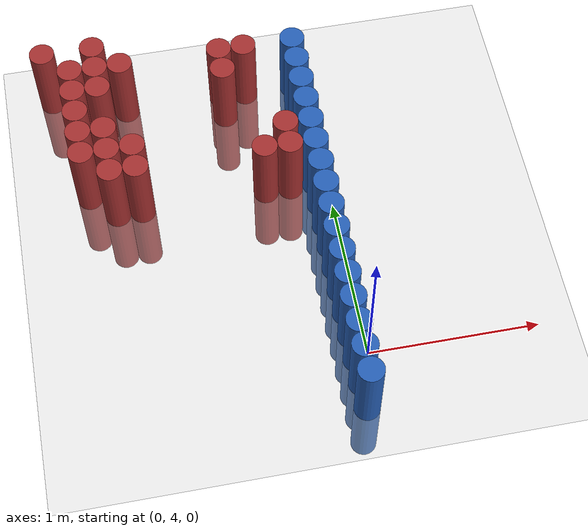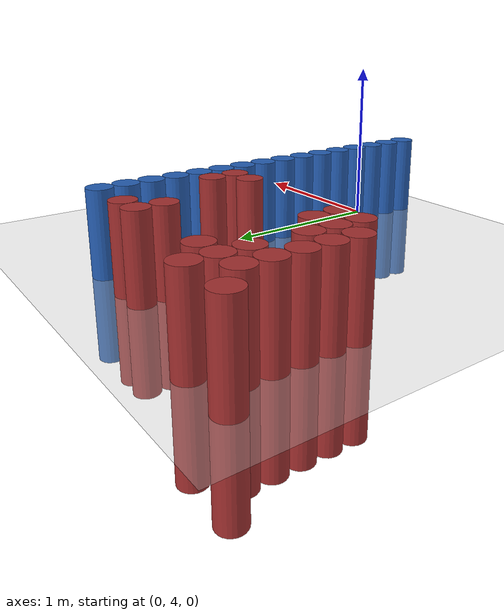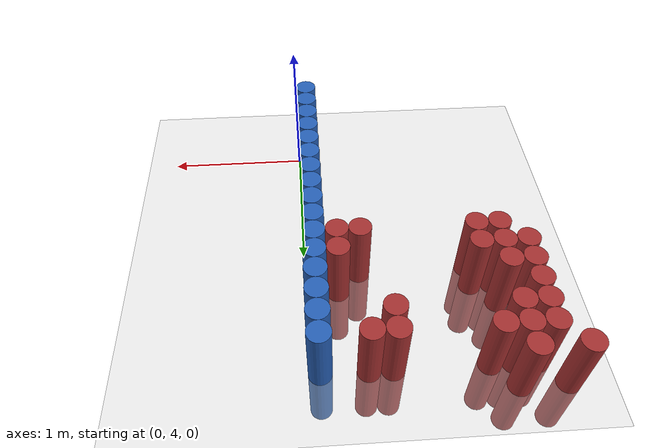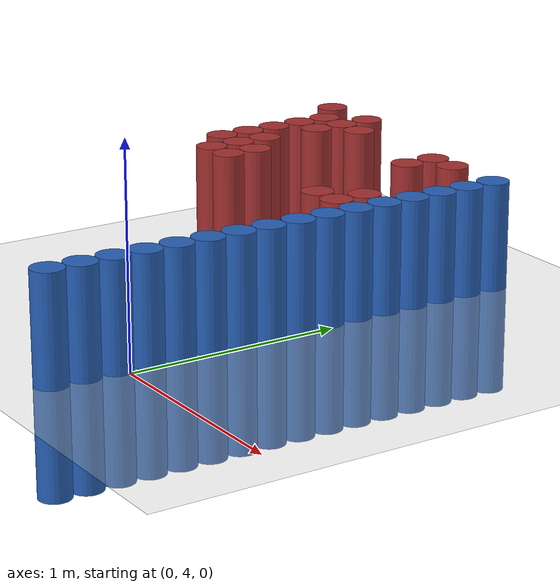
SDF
<sdf version="1.6">
 <world name="default">
  <model name="ground_plane">
   <static>1</static>
   <link name="link">
    <collision name="collision">
     <geometry><plane><normal>0 0 1</normal><size>100 100</size></plane></geometry>
     <surface><friction><ode><mu>100</mu><mu2>50</mu2></ode></friction></surface>
    </collision>
    <visual name="visual">
     <cast_shadows>0</cast_shadows>
     <geometry><plane><normal>0 0 1</normal><size>100 100</size></plane></geometry>
     <material>
      <script><uri>file://media/materials/scripts/gazebo.material</uri><name>Gazebo/Grey</name></script>
     </material>
    </visual>
   </link>
  </model>
  <model name="unit_cylinder_76">
   <static>1</static>
   <pose>-0.075000 3.675000 0.000000 0.000000 0.000000 0.000000</pose>
   <link name="link">
    <inertial>
     <mass>1</mass>
     <inertia><ixx>0.145833</ixx><ixy>0</ixy><ixz>0</ixz><iyy>0.145833</iyy><iyz>0</iyz><izz>0.125</izz></inertia>
    </inertial>
    <collision name="collision">
     <geometry><cylinder><radius>0.075000</radius><length>1</length></cylinder></geometry>
    </collision>
    <visual name="visual">
     <geometry><cylinder><radius>0.075000</radius><length>1</length></cylinder></geometry>
     <material>
      <ambient>0.152000 0.379000 0.720000 1</ambient>
      <diffuse>0.152000 0.379000 0.720000 1</diffuse>
     </material>
     <material>
      <script><name>Gazebo/Grey</name><uri>file://media/materials/scripts/gazebo.material</uri></script>
     </material>
    </visual>
    <sensor name="sensor_contact" type="contact"><contact><collision>collision</collision></contact></sensor>
   </link>
   <plugin filename="gz-sim-touchplugin-system" name="gz::sim::systems::TouchPlugin">
    <target>robot</target>
    <namespace>robot</namespace>
    <time>0.001</time>
    <enabled>true</enabled>
   </plugin>
  </model>
  <model name="unit_cylinder_78">
   <static>1</static>
   <pose>-0.075000 3.825000 0.000000 0.000000 0.000000 0.000000</pose>
   <link name="link">
    <inertial>
     <mass>1</mass>
     <inertia><ixx>0.145833</ixx><ixy>0</ixy><ixz>0</ixz><iyy>0.145833</iyy><iyz>0</iyz><izz>0.125</izz></inertia>
    </inertial>
    <collision name="collision">
     <geometry><cylinder><radius>0.075000</radius><length>1</length></cylinder></geometry>
    </collision>
    <visual name="visual">
     <geometry><cylinder><radius>0.075000</radius><length>1</length></cylinder></geometry>
     <material>
      <ambient>0.152000 0.379000 0.720000 1</ambient>
      <diffuse>0.152000 0.379000 0.720000 1</diffuse>
     </material>
     <material>
      <script><name>Gazebo/Grey</name><uri>file://media/materials/scripts/gazebo.material</uri></script>
     </material>
    </visual>
    <sensor name="sensor_contact" type="contact"><contact><collision>collision</collision></contact></sensor>
   </link>
   <plugin filename="gz-sim-touchplugin-system" name="gz::sim::systems::TouchPlugin">
    <target>robot</target>
    <namespace>robot</namespace>
    <time>0.001</time>
    <enabled>true</enabled>
   </plugin>
  </model>
  <model name="unit_cylinder_80">
   <static>1</static>
   <pose>-0.075000 3.975000 0.000000 0.000000 0.000000 0.000000</pose>
   <link name="link">
    <inertial>
     <mass>1</mass>
     <inertia><ixx>0.145833</ixx><ixy>0</ixy><ixz>0</ixz><iyy>0.145833</iyy><iyz>0</iyz><izz>0.125</izz></inertia>
    </inertial>
    <collision name="collision">
     <geometry><cylinder><radius>0.075000</radius><length>1</length></cylinder></geometry>
    </collision>
    <visual name="visual">
     <geometry><cylinder><radius>0.075000</radius><length>1</length></cylinder></geometry>
     <material>
      <ambient>0.152000 0.379000 0.720000 1</ambient>
      <diffuse>0.152000 0.379000 0.720000 1</diffuse>
     </material>
     <material>
      <script><name>Gazebo/Grey</name><uri>file://media/materials/scripts/gazebo.material</uri></script>
     </material>
    </visual>
    <sensor name="sensor_contact" type="contact"><contact><collision>collision</collision></contact></sensor>
   </link>
   <plugin filename="gz-sim-touchplugin-system" name="gz::sim::systems::TouchPlugin">
    <target>robot</target>
    <namespace>robot</namespace>
    <time>0.001</time>
    <enabled>true</enabled>
   </plugin>
  </model>
  <model name="unit_cylinder_82">
   <static>1</static>
   <pose>-0.075000 4.125000 0.000000 0.000000 0.000000 0.000000</pose>
   <link name="link">
    <inertial>
     <mass>1</mass>
     <inertia><ixx>0.145833</ixx><ixy>0</ixy><ixz>0</ixz><iyy>0.145833</iyy><iyz>0</iyz><izz>0.125</izz></inertia>
    </inertial>
    <collision name="collision">
     <geometry><cylinder><radius>0.075000</radius><length>1</length></cylinder></geometry>
    </collision>
    <visual name="visual">
     <geometry><cylinder><radius>0.075000</radius><length>1</length></cylinder></geometry>
     <material>
      <ambient>0.152000 0.379000 0.720000 1</ambient>
      <diffuse>0.152000 0.379000 0.720000 1</diffuse>
     </material>
     <material>
      <script><name>Gazebo/Grey</name><uri>file://media/materials/scripts/gazebo.material</uri></script>
     </material>
    </visual>
    <sensor name="sensor_contact" type="contact"><contact><collision>collision</collision></contact></sensor>
   </link>
   <plugin filename="gz-sim-touchplugin-system" name="gz::sim::systems::TouchPlugin">
    <target>robot</target>
    <namespace>robot</namespace>
    <time>0.001</time>
    <enabled>true</enabled>
   </plugin>
  </model>
  <model name="unit_cylinder_84">
   <static>1</static>
   <pose>-0.075000 4.275000 0.000000 0.000000 0.000000 0.000000</pose>
   <link name="link">
    <inertial>
     <mass>1</mass>
     <inertia><ixx>0.145833</ixx><ixy>0</ixy><ixz>0</ixz><iyy>0.145833</iyy><iyz>0</iyz><izz>0.125</izz></inertia>
    </inertial>
    <collision name="collision">
     <geometry><cylinder><radius>0.075000</radius><length>1</length></cylinder></geometry>
    </collision>
    <visual name="visual">
     <geometry><cylinder><radius>0.075000</radius><length>1</length></cylinder></geometry>
     <material>
      <ambient>0.152000 0.379000 0.720000 1</ambient>
      <diffuse>0.152000 0.379000 0.720000 1</diffuse>
     </material>
     <material>
      <script><name>Gazebo/Grey</name><uri>file://media/materials/scripts/gazebo.material</uri></script>
     </material>
    </visual>
    <sensor name="sensor_contact" type="contact"><contact><collision>collision</collision></contact></sensor>
   </link>
   <plugin filename="gz-sim-touchplugin-system" name="gz::sim::systems::TouchPlugin">
    <target>robot</target>
    <namespace>robot</namespace>
    <time>0.001</time>
    <enabled>true</enabled>
   </plugin>
  </model>
  <model name="unit_cylinder_86">
   <static>1</static>
   <pose>-0.075000 4.425000 0.000000 0.000000 0.000000 0.000000</pose>
   <link name="link">
    <inertial>
     <mass>1</mass>
     <inertia><ixx>0.145833</ixx><ixy>0</ixy><ixz>0</ixz><iyy>0.145833</iyy><iyz>0</iyz><izz>0.125</izz></inertia>
    </inertial>
    <collision name="collision">
     <geometry><cylinder><radius>0.075000</radius><length>1</length></cylinder></geometry>
    </collision>
    <visual name="visual">
     <geometry><cylinder><radius>0.075000</radius><length>1</length></cylinder></geometry>
     <material>
      <ambient>0.152000 0.379000 0.720000 1</ambient>
      <diffuse>0.152000 0.379000 0.720000 1</diffuse>
     </material>
     <material>
      <script><name>Gazebo/Grey</name><uri>file://media/materials/scripts/gazebo.material</uri></script>
     </material>
    </visual>
    <sensor name="sensor_contact" type="contact"><contact><collision>collision</collision></contact></sensor>
   </link>
   <plugin filename="gz-sim-touchplugin-system" name="gz::sim::systems::TouchPlugin">
    <target>robot</target>
    <namespace>robot</namespace>
    <time>0.001</time>
    <enabled>true</enabled>
   </plugin>
  </model>
  <model name="unit_cylinder_88">
   <static>1</static>
   <pose>-0.075000 4.575000 0.000000 0.000000 0.000000 0.000000</pose>
   <link name="link">
    <inertial>
     <mass>1</mass>
     <inertia><ixx>0.145833</ixx><ixy>0</ixy><ixz>0</ixz><iyy>0.145833</iyy><iyz>0</iyz><izz>0.125</izz></inertia>
    </inertial>
    <collision name="collision">
     <geometry><cylinder><radius>0.075000</radius><length>1</length></cylinder></geometry>
    </collision>
    <visual name="visual">
     <geometry><cylinder><radius>0.075000</radius><length>1</length></cylinder></geometry>
     <material>
      <ambient>0.152000 0.379000 0.720000 1</ambient>
      <diffuse>0.152000 0.379000 0.720000 1</diffuse>
     </material>
     <material>
      <script><name>Gazebo/Grey</name><uri>file://media/materials/scripts/gazebo.material</uri></script>
     </material>
    </visual>
    <sensor name="sensor_contact" type="contact"><contact><collision>collision</collision></contact></sensor>
   </link>
   <plugin filename="gz-sim-touchplugin-system" name="gz::sim::systems::TouchPlugin">
    <target>robot</target>
    <namespace>robot</namespace>
    <time>0.001</time>
    <enabled>true</enabled>
   </plugin>
  </model>
  <model name="unit_cylinder_90">
   <static>1</static>
   <pose>-0.075000 4.725000 0.000000 0.000000 0.000000 0.000000</pose>
   <link name="link">
    <inertial>
     <mass>1</mass>
     <inertia><ixx>0.145833</ixx><ixy>0</ixy><ixz>0</ixz><iyy>0.145833</iyy><iyz>0</iyz><izz>0.125</izz></inertia>
    </inertial>
    <collision name="collision">
     <geometry><cylinder><radius>0.075000</radius><length>1</length></cylinder></geometry>
    </collision>
    <visual name="visual">
     <geometry><cylinder><radius>0.075000</radius><length>1</length></cylinder></geometry>
     <material>
      <ambient>0.152000 0.379000 0.720000 1</ambient>
      <diffuse>0.152000 0.379000 0.720000 1</diffuse>
     </material>
     <material>
      <script><name>Gazebo/Grey</name><uri>file://media/materials/scripts/gazebo.material</uri></script>
     </material>
    </visual>
    <sensor name="sensor_contact" type="contact"><contact><collision>collision</collision></contact></sensor>
   </link>
   <plugin filename="gz-sim-touchplugin-system" name="gz::sim::systems::TouchPlugin">
    <target>robot</target>
    <namespace>robot</namespace>
    <time>0.001</time>
    <enabled>true</enabled>
   </plugin>
  </model>
  <model name="unit_cylinder_92">
   <static>1</static>
   <pose>-0.075000 4.875000 0.000000 0.000000 0.000000 0.000000</pose>
   <link name="link">
    <inertial>
     <mass>1</mass>
     <inertia><ixx>0.145833</ixx><ixy>0</ixy><ixz>0</ixz><iyy>0.145833</iyy><iyz>0</iyz><izz>0.125</izz></inertia>
    </inertial>
    <collision name="collision">
     <geometry><cylinder><radius>0.075000</radius><length>1</length></cylinder></geometry>
    </collision>
    <visual name="visual">
     <geometry><cylinder><radius>0.075000</radius><length>1</length></cylinder></geometry>
     <material>
      <ambient>0.152000 0.379000 0.720000 1</ambient>
      <diffuse>0.152000 0.379000 0.720000 1</diffuse>
     </material>
     <material>
      <script><name>Gazebo/Grey</name><uri>file://media/materials/scripts/gazebo.material</uri></script>
     </material>
    </visual>
    <sensor name="sensor_contact" type="contact"><contact><collision>collision</collision></contact></sensor>
   </link>
   <plugin filename="gz-sim-touchplugin-system" name="gz::sim::systems::TouchPlugin">
    <target>robot</target>
    <namespace>robot</namespace>
    <time>0.001</time>
    <enabled>true</enabled>
   </plugin>
  </model>
  <model name="unit_cylinder_94">
   <static>1</static>
   <pose>-0.075000 5.025000 0.000000 0.000000 0.000000 0.000000</pose>
   <link name="link">
    <inertial>
     <mass>1</mass>
     <inertia><ixx>0.145833</ixx><ixy>0</ixy><ixz>0</ixz><iyy>0.145833</iyy><iyz>0</iyz><izz>0.125</izz></inertia>
    </inertial>
    <collision name="collision">
     <geometry><cylinder><radius>0.075000</radius><length>1</length></cylinder></geometry>
    </collision>
    <visual name="visual">
     <geometry><cylinder><radius>0.075000</radius><length>1</length></cylinder></geometry>
     <material>
      <ambient>0.152000 0.379000 0.720000 1</ambient>
      <diffuse>0.152000 0.379000 0.720000 1</diffuse>
     </material>
     <material>
      <script><name>Gazebo/Grey</name><uri>file://media/materials/scripts/gazebo.material</uri></script>
     </material>
    </visual>
    <sensor name="sensor_contact" type="contact"><contact><collision>collision</collision></contact></sensor>
   </link>
   <plugin filename="gz-sim-touchplugin-system" name="gz::sim::systems::TouchPlugin">
    <target>robot</target>
    <namespace>robot</namespace>
    <time>0.001</time>
    <enabled>true</enabled>
   </plugin>
  </model>
  <model name="unit_cylinder_206">
   <static>1</static>
   <pose>-1.575000 6.075000 0.000000 0.000000 0.000000 0.000000</pose>
   <link name="link">
    <inertial>
     <mass>1</mass>
     <inertia><ixx>0.145833</ixx><ixy>0</ixy><ixz>0</ixz><iyy>0.145833</iyy><iyz>0</iyz><izz>0.125</izz></inertia>
    </inertial>
    <collision name="collision">
     <geometry><cylinder><radius>0.075000</radius><length>1</length></cylinder></geometry>
    </collision>
    <visual name="visual">
     <geometry><cylinder><radius>0.075000</radius><length>1</length></cylinder></geometry>
     <material>
      <ambient>0.648000 0.192000 0.192000 1</ambient>
      <diffuse>0.648000 0.192000 0.192000 1</diffuse>
     </material>
     <material>
      <script><name>Gazebo/Grey</name><uri>file://media/materials/scripts/gazebo.material</uri></script>
     </material>
    </visual>
    <sensor name="sensor_contact" type="contact"><contact><collision>collision</collision></contact></sensor>
   </link>
   <plugin filename="gz-sim-touchplugin-system" name="gz::sim::systems::TouchPlugin">
    <target>robot</target>
    <namespace>robot</namespace>
    <time>0.001</time>
    <enabled>true</enabled>
   </plugin>
  </model>
  <model name="unit_cylinder_213">
   <static>1</static>
   <pose>-1.425000 5.325000 0.000000 0.000000 0.000000 0.000000</pose>
   <link name="link">
    <inertial>
     <mass>1</mass>
     <inertia><ixx>0.145833</ixx><ixy>0</ixy><ixz>0</ixz><iyy>0.145833</iyy><iyz>0</iyz><izz>0.125</izz></inertia>
    </inertial>
    <collision name="collision">
     <geometry><cylinder><radius>0.075000</radius><length>1</length></cylinder></geometry>
    </collision>
    <visual name="visual">
     <geometry><cylinder><radius>0.075000</radius><length>1</length></cylinder></geometry>
     <material>
      <ambient>0.648000 0.192000 0.192000 1</ambient>
      <diffuse>0.648000 0.192000 0.192000 1</diffuse>
     </material>
     <material>
      <script><name>Gazebo/Grey</name><uri>file://media/materials/scripts/gazebo.material</uri></script>
     </material>
    </visual>
    <sensor name="sensor_contact" type="contact"><contact><collision>collision</collision></contact></sensor>
   </link>
   <plugin filename="gz-sim-touchplugin-system" name="gz::sim::systems::TouchPlugin">
    <target>robot</target>
    <namespace>robot</namespace>
    <time>0.001</time>
    <enabled>true</enabled>
   </plugin>
  </model>
  <model name="unit_cylinder_214">
   <static>1</static>
   <pose>-1.425000 5.475000 0.000000 0.000000 0.000000 0.000000</pose>
   <link name="link">
    <inertial>
     <mass>1</mass>
     <inertia><ixx>0.145833</ixx><ixy>0</ixy><ixz>0</ixz><iyy>0.145833</iyy><iyz>0</iyz><izz>0.125</izz></inertia>
    </inertial>
    <collision name="collision">
     <geometry><cylinder><radius>0.075000</radius><length>1</length></cylinder></geometry>
    </collision>
    <visual name="visual">
     <geometry><cylinder><radius>0.075000</radius><length>1</length></cylinder></geometry>
     <material>
      <ambient>0.648000 0.192000 0.192000 1</ambient>
      <diffuse>0.648000 0.192000 0.192000 1</diffuse>
     </material>
     <material>
      <script><name>Gazebo/Grey</name><uri>file://media/materials/scripts/gazebo.material</uri></script>
     </material>
    </visual>
    <sensor name="sensor_contact" type="contact"><contact><collision>collision</collision></contact></sensor>
   </link>
   <plugin filename="gz-sim-touchplugin-system" name="gz::sim::systems::TouchPlugin">
    <target>robot</target>
    <namespace>robot</namespace>
    <time>0.001</time>
    <enabled>true</enabled>
   </plugin>
  </model>
  <model name="unit_cylinder_215">
   <static>1</static>
   <pose>-1.425000 5.625000 0.000000 0.000000 0.000000 0.000000</pose>
   <link name="link">
    <inertial>
     <mass>1</mass>
     <inertia><ixx>0.145833</ixx><ixy>0</ixy><ixz>0</ixz><iyy>0.145833</iyy><iyz>0</iyz><izz>0.125</izz></inertia>
    </inertial>
    <collision name="collision">
     <geometry><cylinder><radius>0.075000</radius><length>1</length></cylinder></geometry>
    </collision>
    <visual name="visual">
     <geometry><cylinder><radius>0.075000</radius><length>1</length></cylinder></geometry>
     <material>
      <ambient>0.648000 0.192000 0.192000 1</ambient>
      <diffuse>0.648000 0.192000 0.192000 1</diffuse>
     </material>
     <material>
      <script><name>Gazebo/Grey</name><uri>file://media/materials/scripts/gazebo.material</uri></script>
     </material>
    </visual>
    <sensor name="sensor_contact" type="contact"><contact><collision>collision</collision></contact></sensor>
   </link>
   <plugin filename="gz-sim-touchplugin-system" name="gz::sim::systems::TouchPlugin">
    <target>robot</target>
    <namespace>robot</namespace>
    <time>0.001</time>
    <enabled>true</enabled>
   </plugin>
  </model>
  <model name="unit_cylinder_216">
   <static>1</static>
   <pose>-1.425000 5.775000 0.000000 0.000000 0.000000 0.000000</pose>
   <link name="link">
    <inertial>
     <mass>1</mass>
     <inertia><ixx>0.145833</ixx><ixy>0</ixy><ixz>0</ixz><iyy>0.145833</iyy><iyz>0</iyz><izz>0.125</izz></inertia>
    </inertial>
    <collision name="collision">
     <geometry><cylinder><radius>0.075000</radius><length>1</length></cylinder></geometry>
    </collision>
    <visual name="visual">
     <geometry><cylinder><radius>0.075000</radius><length>1</length></cylinder></geometry>
     <material>
      <ambient>0.648000 0.192000 0.192000 1</ambient>
      <diffuse>0.648000 0.192000 0.192000 1</diffuse>
     </material>
     <material>
      <script><name>Gazebo/Grey</name><uri>file://media/materials/scripts/gazebo.material</uri></script>
     </material>
    </visual>
    <sensor name="sensor_contact" type="contact"><contact><collision>collision</collision></contact></sensor>
   </link>
   <plugin filename="gz-sim-touchplugin-system" name="gz::sim::systems::TouchPlugin">
    <target>robot</target>
    <namespace>robot</namespace>
    <time>0.001</time>
    <enabled>true</enabled>
   </plugin>
  </model>
  <model name="unit_cylinder_217">
   <static>1</static>
   <pose>-1.425000 5.925000 0.000000 0.000000 0.000000 0.000000</pose>
   <link name="link">
    <inertial>
     <mass>1</mass>
     <inertia><ixx>0.145833</ixx><ixy>0</ixy><ixz>0</ixz><iyy>0.145833</iyy><iyz>0</iyz><izz>0.125</izz></inertia>
    </inertial>
    <collision name="collision">
     <geometry><cylinder><radius>0.075000</radius><length>1</length></cylinder></geometry>
    </collision>
    <visual name="visual">
     <geometry><cylinder><radius>0.075000</radius><length>1</length></cylinder></geometry>
     <material>
      <ambient>0.648000 0.192000 0.192000 1</ambient>
      <diffuse>0.648000 0.192000 0.192000 1</diffuse>
     </material>
     <material>
      <script><name>Gazebo/Grey</name><uri>file://media/materials/scripts/gazebo.material</uri></script>
     </material>
    </visual>
    <sensor name="sensor_contact" type="contact"><contact><collision>collision</collision></contact></sensor>
   </link>
   <plugin filename="gz-sim-touchplugin-system" name="gz::sim::systems::TouchPlugin">
    <target>robot</target>
    <namespace>robot</namespace>
    <time>0.001</time>
    <enabled>true</enabled>
   </plugin>
  </model>
  <model name="unit_cylinder_224">
   <static>1</static>
   <pose>-1.275000 5.175000 0.000000 0.000000 0.000000 0.000000</pose>
   <link name="link">
    <inertial>
     <mass>1</mass>
     <inertia><ixx>0.145833</ixx><ixy>0</ixy><ixz>0</ixz><iyy>0.145833</iyy><iyz>0</iyz><izz>0.125</izz></inertia>
    </inertial>
    <collision name="collision">
     <geometry><cylinder><radius>0.075000</radius><length>1</length></cylinder></geometry>
    </collision>
    <visual name="visual">
     <geometry><cylinder><radius>0.075000</radius><length>1</length></cylinder></geometry>
     <material>
      <ambient>0.648000 0.192000 0.192000 1</ambient>
      <diffuse>0.648000 0.192000 0.192000 1</diffuse>
     </material>
     <material>
      <script><name>Gazebo/Grey</name><uri>file://media/materials/scripts/gazebo.material</uri></script>
     </material>
    </visual>
    <sensor name="sensor_contact" type="contact"><contact><collision>collision</collision></contact></sensor>
   </link>
   <plugin filename="gz-sim-touchplugin-system" name="gz::sim::systems::TouchPlugin">
    <target>robot</target>
    <namespace>robot</namespace>
    <time>0.001</time>
    <enabled>true</enabled>
   </plugin>
  </model>
  <model name="unit_cylinder_225">
   <static>1</static>
   <pose>-1.275000 5.325000 0.000000 0.000000 0.000000 0.000000</pose>
   <link name="link">
    <inertial>
     <mass>1</mass>
     <inertia><ixx>0.145833</ixx><ixy>0</ixy><ixz>0</ixz><iyy>0.145833</iyy><iyz>0</iyz><izz>0.125</izz></inertia>
    </inertial>
    <collision name="collision">
     <geometry><cylinder><radius>0.075000</radius><length>1</length></cylinder></geometry>
    </collision>
    <visual name="visual">
     <geometry><cylinder><radius>0.075000</radius><length>1</length></cylinder></geometry>
     <material>
      <ambient>0.648000 0.192000 0.192000 1</ambient>
      <diffuse>0.648000 0.192000 0.192000 1</diffuse>
     </material>
     <material>
      <script><name>Gazebo/Grey</name><uri>file://media/materials/scripts/gazebo.material</uri></script>
     </material>
    </visual>
    <sensor name="sensor_contact" type="contact"><contact><collision>collision</collision></contact></sensor>
   </link>
   <plugin filename="gz-sim-touchplugin-system" name="gz::sim::systems::TouchPlugin">
    <target>robot</target>
    <namespace>robot</namespace>
    <time>0.001</time>
    <enabled>true</enabled>
   </plugin>
  </model>
  <model name="unit_cylinder_226">
   <static>1</static>
   <pose>-1.275000 5.475000 0.000000 0.000000 0.000000 0.000000</pose>
   <link name="link">
    <inertial>
     <mass>1</mass>
     <inertia><ixx>0.145833</ixx><ixy>0</ixy><ixz>0</ixz><iyy>0.145833</iyy><iyz>0</iyz><izz>0.125</izz></inertia>
    </inertial>
    <collision name="collision">
     <geometry><cylinder><radius>0.075000</radius><length>1</length></cylinder></geometry>
    </collision>
    <visual name="visual">
     <geometry><cylinder><radius>0.075000</radius><length>1</length></cylinder></geometry>
     <material>
      <ambient>0.648000 0.192000 0.192000 1</ambient>
      <diffuse>0.648000 0.192000 0.192000 1</diffuse>
     </material>
     <material>
      <script><name>Gazebo/Grey</name><uri>file://media/materials/scripts/gazebo.material</uri></script>
     </material>
    </visual>
    <sensor name="sensor_contact" type="contact"><contact><collision>collision</collision></contact></sensor>
   </link>
   <plugin filename="gz-sim-touchplugin-system" name="gz::sim::systems::TouchPlugin">
    <target>robot</target>
    <namespace>robot</namespace>
    <time>0.001</time>
    <enabled>true</enabled>
   </plugin>
  </model>
  <model name="unit_cylinder_227">
   <static>1</static>
   <pose>-1.275000 5.775000 0.000000 0.000000 0.000000 0.000000</pose>
   <link name="link">
    <inertial>
     <mass>1</mass>
     <inertia><ixx>0.145833</ixx><ixy>0</ixy><ixz>0</ixz><iyy>0.145833</iyy><iyz>0</iyz><izz>0.125</izz></inertia>
    </inertial>
    <collision name="collision">
     <geometry><cylinder><radius>0.075000</radius><length>1</length></cylinder></geometry>
    </collision>
    <visual name="visual">
     <geometry><cylinder><radius>0.075000</radius><length>1</length></cylinder></geometry>
     <material>
      <ambient>0.648000 0.192000 0.192000 1</ambient>
      <diffuse>0.648000 0.192000 0.192000 1</diffuse>
     </material>
     <material>
      <script><name>Gazebo/Grey</name><uri>file://media/materials/scripts/gazebo.material</uri></script>
     </material>
    </visual>
    <sensor name="sensor_contact" type="contact"><contact><collision>collision</collision></contact></sensor>
   </link>
   <plugin filename="gz-sim-touchplugin-system" name="gz::sim::systems::TouchPlugin">
    <target>robot</target>
    <namespace>robot</namespace>
    <time>0.001</time>
    <enabled>true</enabled>
   </plugin>
  </model>
  <model name="unit_cylinder_228">
   <static>1</static>
   <pose>-1.275000 5.925000 0.000000 0.000000 0.000000 0.000000</pose>
   <link name="link">
    <inertial>
     <mass>1</mass>
     <inertia><ixx>0.145833</ixx><ixy>0</ixy><ixz>0</ixz><iyy>0.145833</iyy><iyz>0</iyz><izz>0.125</izz></inertia>
    </inertial>
    <collision name="collision">
     <geometry><cylinder><radius>0.075000</radius><length>1</length></cylinder></geometry>
    </collision>
    <visual name="visual">
     <geometry><cylinder><radius>0.075000</radius><length>1</length></cylinder></geometry>
     <material>
      <ambient>0.648000 0.192000 0.192000 1</ambient>
      <diffuse>0.648000 0.192000 0.192000 1</diffuse>
     </material>
     <material>
      <script><name>Gazebo/Grey</name><uri>file://media/materials/scripts/gazebo.material</uri></script>
     </material>
    </visual>
    <sensor name="sensor_contact" type="contact"><contact><collision>collision</collision></contact></sensor>
   </link>
   <plugin filename="gz-sim-touchplugin-system" name="gz::sim::systems::TouchPlugin">
    <target>robot</target>
    <namespace>robot</namespace>
    <time>0.001</time>
    <enabled>true</enabled>
   </plugin>
  </model>
  <model name="unit_cylinder_229">
   <static>1</static>
   <pose>-1.275000 6.075000 0.000000 0.000000 0.000000 0.000000</pose>
   <link name="link">
    <inertial>
     <mass>1</mass>
     <inertia><ixx>0.145833</ixx><ixy>0</ixy><ixz>0</ixz><iyy>0.145833</iyy><iyz>0</iyz><izz>0.125</izz></inertia>
    </inertial>
    <collision name="collision">
     <geometry><cylinder><radius>0.075000</radius><length>1</length></cylinder></geometry>
    </collision>
    <visual name="visual">
     <geometry><cylinder><radius>0.075000</radius><length>1</length></cylinder></geometry>
     <material>
      <ambient>0.648000 0.192000 0.192000 1</ambient>
      <diffuse>0.648000 0.192000 0.192000 1</diffuse>
     </material>
     <material>
      <script><name>Gazebo/Grey</name><uri>file://media/materials/scripts/gazebo.material</uri></script>
     </material>
    </visual>
    <sensor name="sensor_contact" type="contact"><contact><collision>collision</collision></contact></sensor>
   </link>
   <plugin filename="gz-sim-touchplugin-system" name="gz::sim::systems::TouchPlugin">
    <target>robot</target>
    <namespace>robot</namespace>
    <time>0.001</time>
    <enabled>true</enabled>
   </plugin>
  </model>
  <model name="unit_cylinder_237">
   <static>1</static>
   <pose>-1.125000 5.175000 0.000000 0.000000 0.000000 0.000000</pose>
   <link name="link">
    <inertial>
     <mass>1</mass>
     <inertia><ixx>0.145833</ixx><ixy>0</ixy><ixz>0</ixz><iyy>0.145833</iyy><iyz>0</iyz><izz>0.125</izz></inertia>
    </inertial>
    <collision name="collision">
     <geometry><cylinder><radius>0.075000</radius><length>1</length></cylinder></geometry>
    </collision>
    <visual name="visual">
     <geometry><cylinder><radius>0.075000</radius><length>1</length></cylinder></geometry>
     <material>
      <ambient>0.648000 0.192000 0.192000 1</ambient>
      <diffuse>0.648000 0.192000 0.192000 1</diffuse>
     </material>
     <material>
      <script><name>Gazebo/Grey</name><uri>file://media/materials/scripts/gazebo.material</uri></script>
     </material>
    </visual>
    <sensor name="sensor_contact" type="contact"><contact><collision>collision</collision></contact></sensor>
   </link>
   <plugin filename="gz-sim-touchplugin-system" name="gz::sim::systems::TouchPlugin">
    <target>robot</target>
    <namespace>robot</namespace>
    <time>0.001</time>
    <enabled>true</enabled>
   </plugin>
  </model>
  <model name="unit_cylinder_238">
   <static>1</static>
   <pose>-1.125000 5.325000 0.000000 0.000000 0.000000 0.000000</pose>
   <link name="link">
    <inertial>
     <mass>1</mass>
     <inertia><ixx>0.145833</ixx><ixy>0</ixy><ixz>0</ixz><iyy>0.145833</iyy><iyz>0</iyz><izz>0.125</izz></inertia>
    </inertial>
    <collision name="collision">
     <geometry><cylinder><radius>0.075000</radius><length>1</length></cylinder></geometry>
    </collision>
    <visual name="visual">
     <geometry><cylinder><radius>0.075000</radius><length>1</length></cylinder></geometry>
     <material>
      <ambient>0.648000 0.192000 0.192000 1</ambient>
      <diffuse>0.648000 0.192000 0.192000 1</diffuse>
     </material>
     <material>
      <script><name>Gazebo/Grey</name><uri>file://media/materials/scripts/gazebo.material</uri></script>
     </material>
    </visual>
    <sensor name="sensor_contact" type="contact"><contact><collision>collision</collision></contact></sensor>
   </link>
   <plugin filename="gz-sim-touchplugin-system" name="gz::sim::systems::TouchPlugin">
    <target>robot</target>
    <namespace>robot</namespace>
    <time>0.001</time>
    <enabled>true</enabled>
   </plugin>
  </model>
  <model name="unit_cylinder_239">
   <static>1</static>
   <pose>-1.125000 5.925000 0.000000 0.000000 0.000000 0.000000</pose>
   <link name="link">
    <inertial>
     <mass>1</mass>
     <inertia><ixx>0.145833</ixx><ixy>0</ixy><ixz>0</ixz><iyy>0.145833</iyy><iyz>0</iyz><izz>0.125</izz></inertia>
    </inertial>
    <collision name="collision">
     <geometry><cylinder><radius>0.075000</radius><length>1</length></cylinder></geometry>
    </collision>
    <visual name="visual">
     <geometry><cylinder><radius>0.075000</radius><length>1</length></cylinder></geometry>
     <material>
      <ambient>0.648000 0.192000 0.192000 1</ambient>
      <diffuse>0.648000 0.192000 0.192000 1</diffuse>
     </material>
     <material>
      <script><name>Gazebo/Grey</name><uri>file://media/materials/scripts/gazebo.material</uri></script>
     </material>
    </visual>
    <sensor name="sensor_contact" type="contact"><contact><collision>collision</collision></contact></sensor>
   </link>
   <plugin filename="gz-sim-touchplugin-system" name="gz::sim::systems::TouchPlugin">
    <target>robot</target>
    <namespace>robot</namespace>
    <time>0.001</time>
    <enabled>true</enabled>
   </plugin>
  </model>
  <model name="unit_cylinder_276">
   <static>1</static>
   <pose>-0.525000 5.775000 0.000000 0.000000 0.000000 0.000000</pose>
   <link name="link">
    <inertial>
     <mass>1</mass>
     <inertia><ixx>0.145833</ixx><ixy>0</ixy><ixz>0</ixz><iyy>0.145833</iyy><iyz>0</iyz><izz>0.125</izz></inertia>
    </inertial>
    <collision name="collision">
     <geometry><cylinder><radius>0.075000</radius><length>1</length></cylinder></geometry>
    </collision>
    <visual name="visual">
     <geometry><cylinder><radius>0.075000</radius><length>1</length></cylinder></geometry>
     <material>
      <ambient>0.648000 0.192000 0.192000 1</ambient>
      <diffuse>0.648000 0.192000 0.192000 1</diffuse>
     </material>
     <material>
      <script><name>Gazebo/Grey</name><uri>file://media/materials/scripts/gazebo.material</uri></script>
     </material>
    </visual>
    <sensor name="sensor_contact" type="contact"><contact><collision>collision</collision></contact></sensor>
   </link>
   <plugin filename="gz-sim-touchplugin-system" name="gz::sim::systems::TouchPlugin">
    <target>robot</target>
    <namespace>robot</namespace>
    <time>0.001</time>
    <enabled>true</enabled>
   </plugin>
  </model>
  <model name="unit_cylinder_277">
   <static>1</static>
   <pose>-0.525000 5.925000 0.000000 0.000000 0.000000 0.000000</pose>
   <link name="link">
    <inertial>
     <mass>1</mass>
     <inertia><ixx>0.145833</ixx><ixy>0</ixy><ixz>0</ixz><iyy>0.145833</iyy><iyz>0</iyz><izz>0.125</izz></inertia>
    </inertial>
    <collision name="collision">
     <geometry><cylinder><radius>0.075000</radius><length>1</length></cylinder></geometry>
    </collision>
    <visual name="visual">
     <geometry><cylinder><radius>0.075000</radius><length>1</length></cylinder></geometry>
     <material>
      <ambient>0.648000 0.192000 0.192000 1</ambient>
      <diffuse>0.648000 0.192000 0.192000 1</diffuse>
     </material>
     <material>
      <script><name>Gazebo/Grey</name><uri>file://media/materials/scripts/gazebo.material</uri></script>
     </material>
    </visual>
    <sensor name="sensor_contact" type="contact"><contact><collision>collision</collision></contact></sensor>
   </link>
   <plugin filename="gz-sim-touchplugin-system" name="gz::sim::systems::TouchPlugin">
    <target>robot</target>
    <namespace>robot</namespace>
    <time>0.001</time>
    <enabled>true</enabled>
   </plugin>
  </model>
  <model name="unit_cylinder_282">
   <static>1</static>
   <pose>-0.375000 5.175000 0.000000 0.000000 0.000000 0.000000</pose>
   <link name="link">
    <inertial>
     <mass>1</mass>
     <inertia><ixx>0.145833</ixx><ixy>0</ixy><ixz>0</ixz><iyy>0.145833</iyy><iyz>0</iyz><izz>0.125</izz></inertia>
    </inertial>
    <collision name="collision">
     <geometry><cylinder><radius>0.075000</radius><length>1</length></cylinder></geometry>
    </collision>
    <visual name="visual">
     <geometry><cylinder><radius>0.075000</radius><length>1</length></cylinder></geometry>
     <material>
      <ambient>0.648000 0.192000 0.192000 1</ambient>
      <diffuse>0.648000 0.192000 0.192000 1</diffuse>
     </material>
     <material>
      <script><name>Gazebo/Grey</name><uri>file://media/materials/scripts/gazebo.material</uri></script>
     </material>
    </visual>
    <sensor name="sensor_contact" type="contact"><contact><collision>collision</collision></contact></sensor>
   </link>
   <plugin filename="gz-sim-touchplugin-system" name="gz::sim::systems::TouchPlugin">
    <target>robot</target>
    <namespace>robot</namespace>
    <time>0.001</time>
    <enabled>true</enabled>
   </plugin>
  </model>
  <model name="unit_cylinder_283">
   <static>1</static>
   <pose>-0.375000 5.925000 0.000000 0.000000 0.000000 0.000000</pose>
   <link name="link">
    <inertial>
     <mass>1</mass>
     <inertia><ixx>0.145833</ixx><ixy>0</ixy><ixz>0</ixz><iyy>0.145833</iyy><iyz>0</iyz><izz>0.125</izz></inertia>
    </inertial>
    <collision name="collision">
     <geometry><cylinder><radius>0.075000</radius><length>1</length></cylinder></geometry>
    </collision>
    <visual name="visual">
     <geometry><cylinder><radius>0.075000</radius><length>1</length></cylinder></geometry>
     <material>
      <ambient>0.648000 0.192000 0.192000 1</ambient>
      <diffuse>0.648000 0.192000 0.192000 1</diffuse>
     </material>
     <material>
      <script><name>Gazebo/Grey</name><uri>file://media/materials/scripts/gazebo.material</uri></script>
     </material>
    </visual>
    <sensor name="sensor_contact" type="contact"><contact><collision>collision</collision></contact></sensor>
   </link>
   <plugin filename="gz-sim-touchplugin-system" name="gz::sim::systems::TouchPlugin">
    <target>robot</target>
    <namespace>robot</namespace>
    <time>0.001</time>
    <enabled>true</enabled>
   </plugin>
  </model>
  <model name="unit_cylinder_293">
   <static>1</static>
   <pose>-0.225000 5.175000 0.000000 0.000000 0.000000 0.000000</pose>
   <link name="link">
    <inertial>
     <mass>1</mass>
     <inertia><ixx>0.145833</ixx><ixy>0</ixy><ixz>0</ixz><iyy>0.145833</iyy><iyz>0</iyz><izz>0.125</izz></inertia>
    </inertial>
    <collision name="collision">
     <geometry><cylinder><radius>0.075000</radius><length>1</length></cylinder></geometry>
    </collision>
    <visual name="visual">
     <geometry><cylinder><radius>0.075000</radius><length>1</length></cylinder></geometry>
     <material>
      <ambient>0.648000 0.192000 0.192000 1</ambient>
      <diffuse>0.648000 0.192000 0.192000 1</diffuse>
     </material>
     <material>
      <script><name>Gazebo/Grey</name><uri>file://media/materials/scripts/gazebo.material</uri></script>
     </material>
    </visual>
    <sensor name="sensor_contact" type="contact"><contact><collision>collision</collision></contact></sensor>
   </link>
   <plugin filename="gz-sim-touchplugin-system" name="gz::sim::systems::TouchPlugin">
    <target>robot</target>
    <namespace>robot</namespace>
    <time>0.001</time>
    <enabled>true</enabled>
   </plugin>
  </model>
  <model name="unit_cylinder_294">
   <static>1</static>
   <pose>-0.225000 5.325000 0.000000 0.000000 0.000000 0.000000</pose>
   <link name="link">
    <inertial>
     <mass>1</mass>
     <inertia><ixx>0.145833</ixx><ixy>0</ixy><ixz>0</ixz><iyy>0.145833</iyy><iyz>0</iyz><izz>0.125</izz></inertia>
    </inertial>
    <collision name="collision">
     <geometry><cylinder><radius>0.075000</radius><length>1</length></cylinder></geometry>
    </collision>
    <visual name="visual">
     <geometry><cylinder><radius>0.075000</radius><length>1</length></cylinder></geometry>
     <material>
      <ambient>0.648000 0.192000 0.192000 1</ambient>
      <diffuse>0.648000 0.192000 0.192000 1</diffuse>
     </material>
     <material>
      <script><name>Gazebo/Grey</name><uri>file://media/materials/scripts/gazebo.material</uri></script>
     </material>
    </visual>
    <sensor name="sensor_contact" type="contact"><contact><collision>collision</collision></contact></sensor>
   </link>
   <plugin filename="gz-sim-touchplugin-system" name="gz::sim::systems::TouchPlugin">
    <target>robot</target>
    <namespace>robot</namespace>
    <time>0.001</time>
    <enabled>true</enabled>
   </plugin>
  </model>
  <model name="unit_cylinder_307">
   <static>1</static>
   <pose>-0.075000 5.175000 0.000000 0.000000 0.000000 0.000000</pose>
   <link name="link">
    <inertial>
     <mass>1</mass>
     <inertia><ixx>0.145833</ixx><ixy>0</ixy><ixz>0</ixz><iyy>0.145833</iyy><iyz>0</iyz><izz>0.125</izz></inertia>
    </inertial>
    <collision name="collision">
     <geometry><cylinder><radius>0.075000</radius><length>1</length></cylinder></geometry>
    </collision>
    <visual name="visual">
     <geometry><cylinder><radius>0.075000</radius><length>1</length></cylinder></geometry>
     <material>
      <ambient>0.152000 0.379000 0.720000 1</ambient>
      <diffuse>0.152000 0.379000 0.720000 1</diffuse>
     </material>
     <material>
      <script><name>Gazebo/Grey</name><uri>file://media/materials/scripts/gazebo.material</uri></script>
     </material>
    </visual>
    <sensor name="sensor_contact" type="contact"><contact><collision>collision</collision></contact></sensor>
   </link>
   <plugin filename="gz-sim-touchplugin-system" name="gz::sim::systems::TouchPlugin">
    <target>robot</target>
    <namespace>robot</namespace>
    <time>0.001</time>
    <enabled>true</enabled>
   </plugin>
  </model>
  <model name="unit_cylinder_308">
   <static>1</static>
   <pose>-0.075000 5.325000 0.000000 0.000000 0.000000 0.000000</pose>
   <link name="link">
    <inertial>
     <mass>1</mass>
     <inertia><ixx>0.145833</ixx><ixy>0</ixy><ixz>0</ixz><iyy>0.145833</iyy><iyz>0</iyz><izz>0.125</izz></inertia>
    </inertial>
    <collision name="collision">
     <geometry><cylinder><radius>0.075000</radius><length>1</length></cylinder></geometry>
    </collision>
    <visual name="visual">
     <geometry><cylinder><radius>0.075000</radius><length>1</length></cylinder></geometry>
     <material>
      <ambient>0.152000 0.379000 0.720000 1</ambient>
      <diffuse>0.152000 0.379000 0.720000 1</diffuse>
     </material>
     <material>
      <script><name>Gazebo/Grey</name><uri>file://media/materials/scripts/gazebo.material</uri></script>
     </material>
    </visual>
    <sensor name="sensor_contact" type="contact"><contact><collision>collision</collision></contact></sensor>
   </link>
   <plugin filename="gz-sim-touchplugin-system" name="gz::sim::systems::TouchPlugin">
    <target>robot</target>
    <namespace>robot</namespace>
    <time>0.001</time>
    <enabled>true</enabled>
   </plugin>
  </model>
  <model name="unit_cylinder_309">
   <static>1</static>
   <pose>-0.075000 5.475000 0.000000 0.000000 0.000000 0.000000</pose>
   <link name="link">
    <inertial>
     <mass>1</mass>
     <inertia><ixx>0.145833</ixx><ixy>0</ixy><ixz>0</ixz><iyy>0.145833</iyy><iyz>0</iyz><izz>0.125</izz></inertia>
    </inertial>
    <collision name="collision">
     <geometry><cylinder><radius>0.075000</radius><length>1</length></cylinder></geometry>
    </collision>
    <visual name="visual">
     <geometry><cylinder><radius>0.075000</radius><length>1</length></cylinder></geometry>
     <material>
      <ambient>0.152000 0.379000 0.720000 1</ambient>
      <diffuse>0.152000 0.379000 0.720000 1</diffuse>
     </material>
     <material>
      <script><name>Gazebo/Grey</name><uri>file://media/materials/scripts/gazebo.material</uri></script>
     </material>
    </visual>
    <sensor name="sensor_contact" type="contact"><contact><collision>collision</collision></contact></sensor>
   </link>
   <plugin filename="gz-sim-touchplugin-system" name="gz::sim::systems::TouchPlugin">
    <target>robot</target>
    <namespace>robot</namespace>
    <time>0.001</time>
    <enabled>true</enabled>
   </plugin>
  </model>
  <model name="unit_cylinder_310">
   <static>1</static>
   <pose>-0.075000 5.625000 0.000000 0.000000 0.000000 0.000000</pose>
   <link name="link">
    <inertial>
     <mass>1</mass>
     <inertia><ixx>0.145833</ixx><ixy>0</ixy><ixz>0</ixz><iyy>0.145833</iyy><iyz>0</iyz><izz>0.125</izz></inertia>
    </inertial>
    <collision name="collision">
     <geometry><cylinder><radius>0.075000</radius><length>1</length></cylinder></geometry>
    </collision>
    <visual name="visual">
     <geometry><cylinder><radius>0.075000</radius><length>1</length></cylinder></geometry>
     <material>
      <ambient>0.152000 0.379000 0.720000 1</ambient>
      <diffuse>0.152000 0.379000 0.720000 1</diffuse>
     </material>
     <material>
      <script><name>Gazebo/Grey</name><uri>file://media/materials/scripts/gazebo.material</uri></script>
     </material>
    </visual>
    <sensor name="sensor_contact" type="contact"><contact><collision>collision</collision></contact></sensor>
   </link>
   <plugin filename="gz-sim-touchplugin-system" name="gz::sim::systems::TouchPlugin">
    <target>robot</target>
    <namespace>robot</namespace>
    <time>0.001</time>
    <enabled>true</enabled>
   </plugin>
  </model>
  <model name="unit_cylinder_311">
   <static>1</static>
   <pose>-0.075000 5.775000 0.000000 0.000000 0.000000 0.000000</pose>
   <link name="link">
    <inertial>
     <mass>1</mass>
     <inertia><ixx>0.145833</ixx><ixy>0</ixy><ixz>0</ixz><iyy>0.145833</iyy><iyz>0</iyz><izz>0.125</izz></inertia>
    </inertial>
    <collision name="collision">
     <geometry><cylinder><radius>0.075000</radius><length>1</length></cylinder></geometry>
    </collision>
    <visual name="visual">
     <geometry><cylinder><radius>0.075000</radius><length>1</length></cylinder></geometry>
     <material>
      <ambient>0.152000 0.379000 0.720000 1</ambient>
      <diffuse>0.152000 0.379000 0.720000 1</diffuse>
     </material>
     <material>
      <script><name>Gazebo/Grey</name><uri>file://media/materials/scripts/gazebo.material</uri></script>
     </material>
    </visual>
    <sensor name="sensor_contact" type="contact"><contact><collision>collision</collision></contact></sensor>
   </link>
   <plugin filename="gz-sim-touchplugin-system" name="gz::sim::systems::TouchPlugin">
    <target>robot</target>
    <namespace>robot</namespace>
    <time>0.001</time>
    <enabled>true</enabled>
   </plugin>
  </model>
  <model name="unit_cylinder_312">
   <static>1</static>
   <pose>-0.075000 5.925000 0.000000 0.000000 0.000000 0.000000</pose>
   <link name="link">
    <inertial>
     <mass>1</mass>
     <inertia><ixx>0.145833</ixx><ixy>0</ixy><ixz>0</ixz><iyy>0.145833</iyy><iyz>0</iyz><izz>0.125</izz></inertia>
    </inertial>
    <collision name="collision">
     <geometry><cylinder><radius>0.075000</radius><length>1</length></cylinder></geometry>
    </collision>
    <visual name="visual">
     <geometry><cylinder><radius>0.075000</radius><length>1</length></cylinder></geometry>
     <material>
      <ambient>0.152000 0.379000 0.720000 1</ambient>
      <diffuse>0.152000 0.379000 0.720000 1</diffuse>
     </material>
     <material>
      <script><name>Gazebo/Grey</name><uri>file://media/materials/scripts/gazebo.material</uri></script>
     </material>
    </visual>
    <sensor name="sensor_contact" type="contact"><contact><collision>collision</collision></contact></sensor>
   </link>
   <plugin filename="gz-sim-touchplugin-system" name="gz::sim::systems::TouchPlugin">
    <target>robot</target>
    <namespace>robot</namespace>
    <time>0.001</time>
    <enabled>true</enabled>
   </plugin>
  </model>
 </world>
</sdf>
